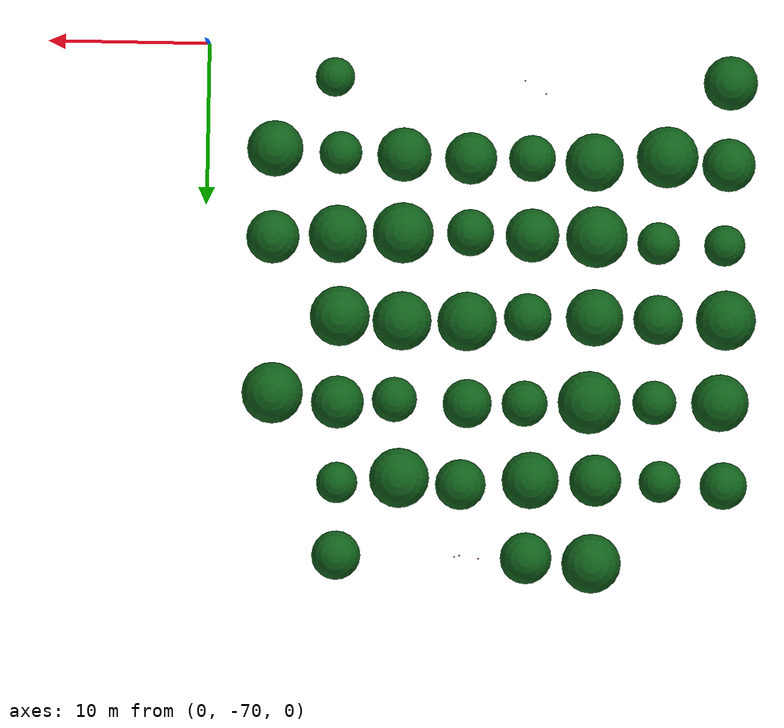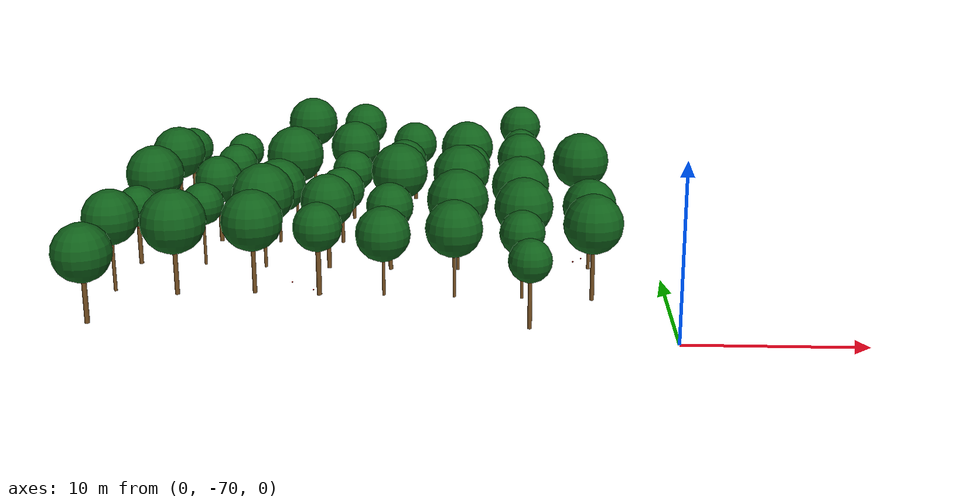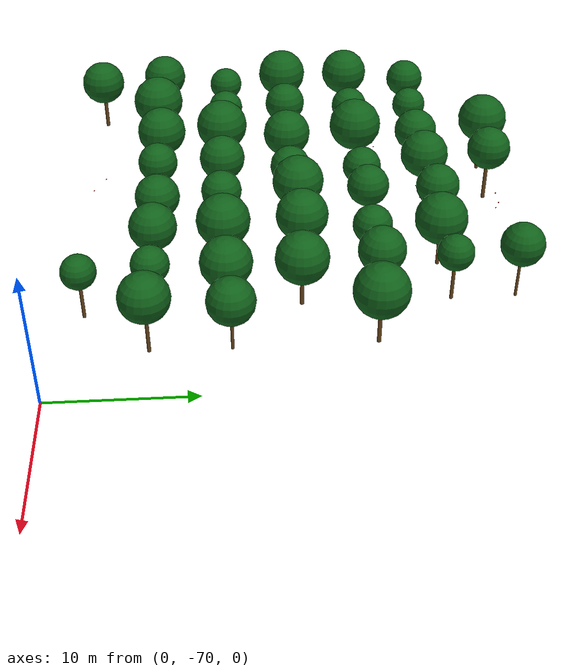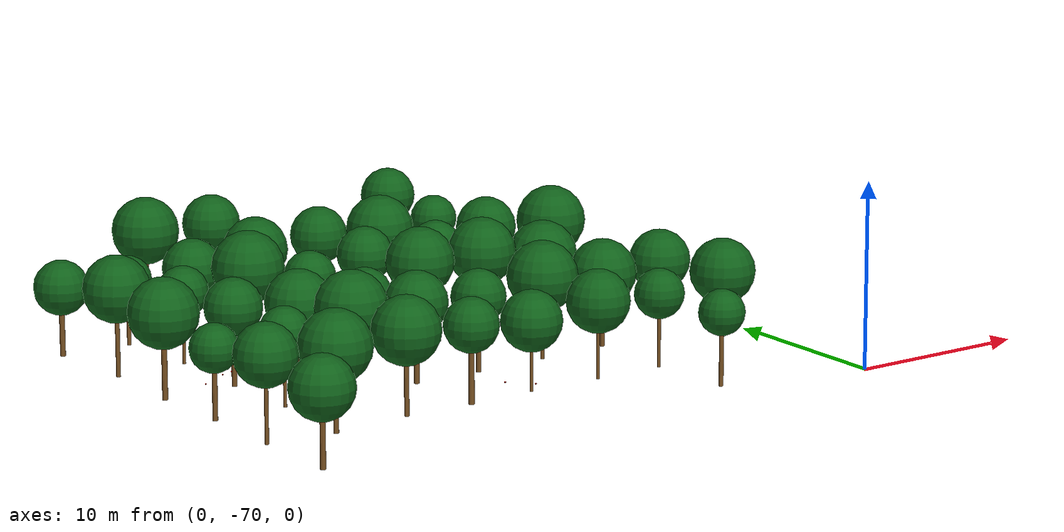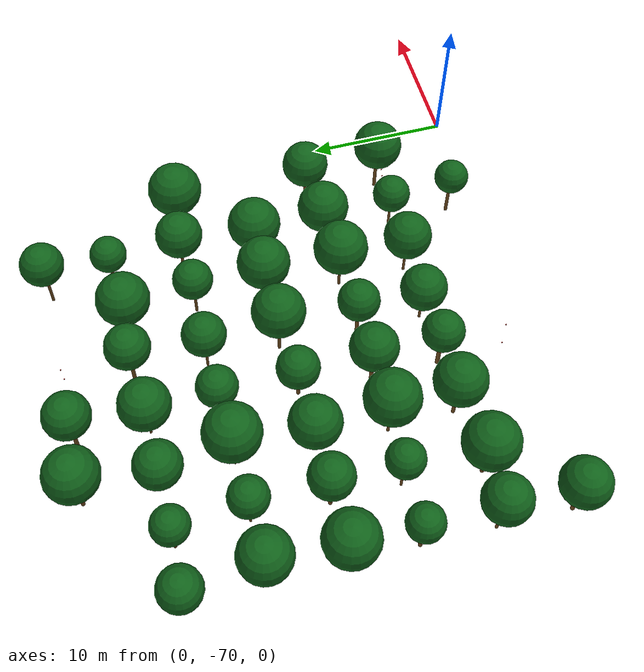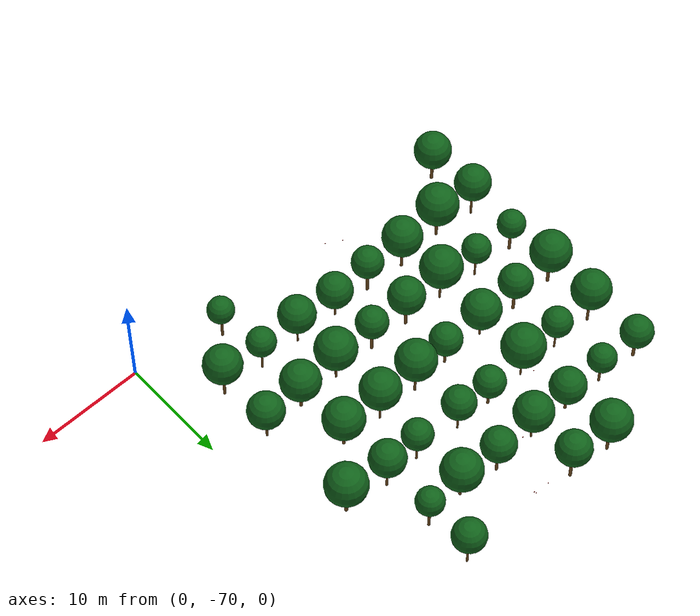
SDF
<sdf version="1.9">
 <world name="cheongsong_orchard">
  <model name="apple_tree_507">
   <static>true</static>
   <pose>-32.31 -67.98 0 0 0 0</pose>
   <link name="link">
    <collision name="trunk_col">
     <pose>0 0 1.20 0 0 0</pose>
     <geometry><cylinder><radius>0.141</radius><length>2.41</length></cylinder></geometry>
    </collision>
    <visual name="trunk_vis">
     <pose>0 0 1.20 0 0 0</pose>
     <geometry><cylinder><radius>0.141</radius><length>2.41</length></cylinder></geometry>
     <material><ambient>0.35 0.22 0.08 1</ambient><diffuse>0.45 0.30 0.12 1</diffuse></material>
    </visual>
    <collision name="canopy_col">
     <pose>0 0 4.08 0 0 0</pose>
     <geometry><sphere><radius>1.67</radius></sphere></geometry>
    </collision>
    <visual name="canopy_vis">
     <pose>0 0 4.08 0 0 0</pose>
     <geometry><sphere><radius>1.67</radius></sphere></geometry>
     <material><ambient>0.04 0.28 0.06 1</ambient><diffuse>0.06 0.38 0.10 1</diffuse></material>
    </visual>
   </link>
  </model>
  <model name="apple_tree_513">
   <static>true</static>
   <pose>-7.92 -67.95 0 0 0 0</pose>
   <link name="link">
    <collision name="trunk_col">
     <pose>0 0 1.34 0 0 0</pose>
     <geometry><cylinder><radius>0.117</radius><length>2.69</length></cylinder></geometry>
    </collision>
    <visual name="trunk_vis">
     <pose>0 0 1.34 0 0 0</pose>
     <geometry><cylinder><radius>0.117</radius><length>2.69</length></cylinder></geometry>
     <material><ambient>0.35 0.22 0.08 1</ambient><diffuse>0.45 0.30 0.12 1</diffuse></material>
    </visual>
    <collision name="canopy_col">
     <pose>0 0 3.90 0 0 0</pose>
     <geometry><sphere><radius>1.21</radius></sphere></geometry>
    </collision>
    <visual name="canopy_vis">
     <pose>0 0 3.90 0 0 0</pose>
     <geometry><sphere><radius>1.21</radius></sphere></geometry>
     <material><ambient>0.04 0.28 0.06 1</ambient><diffuse>0.06 0.38 0.10 1</diffuse></material>
    </visual>
   </link>
  </model>
  <model name="apple_tree_563">
   <static>true</static>
   <pose>-32.26 -62.92 0 0 0 0</pose>
   <link name="link">
    <collision name="trunk_col">
     <pose>0 0 1.45 0 0 0</pose>
     <geometry><cylinder><radius>0.102</radius><length>2.90</length></cylinder></geometry>
    </collision>
    <visual name="trunk_vis">
     <pose>0 0 1.45 0 0 0</pose>
     <geometry><cylinder><radius>0.102</radius><length>2.90</length></cylinder></geometry>
     <material><ambient>0.35 0.22 0.08 1</ambient><diffuse>0.45 0.30 0.12 1</diffuse></material>
    </visual>
    <collision name="canopy_col">
     <pose>0 0 4.54 0 0 0</pose>
     <geometry><sphere><radius>1.64</radius></sphere></geometry>
    </collision>
    <visual name="canopy_vis">
     <pose>0 0 4.54 0 0 0</pose>
     <geometry><sphere><radius>1.64</radius></sphere></geometry>
     <material><ambient>0.04 0.28 0.06 1</ambient><diffuse>0.06 0.38 0.10 1</diffuse></material>
    </visual>
   </link>
  </model>
  <model name="apple_tree_564">
   <static>true</static>
   <pose>-28.48 -63.34 0 0 0 0</pose>
   <link name="link">
    <collision name="trunk_col">
     <pose>0 0 1.28 0 0 0</pose>
     <geometry><cylinder><radius>0.135</radius><length>2.56</length></cylinder></geometry>
    </collision>
    <visual name="trunk_vis">
     <pose>0 0 1.28 0 0 0</pose>
     <geometry><cylinder><radius>0.135</radius><length>2.56</length></cylinder></geometry>
     <material><ambient>0.35 0.22 0.08 1</ambient><diffuse>0.45 0.30 0.12 1</diffuse></material>
    </visual>
    <collision name="canopy_col">
     <pose>0 0 4.45 0 0 0</pose>
     <geometry><sphere><radius>1.90</radius></sphere></geometry>
    </collision>
    <visual name="canopy_vis">
     <pose>0 0 4.45 0 0 0</pose>
     <geometry><sphere><radius>1.90</radius></sphere></geometry>
     <material><ambient>0.04 0.28 0.06 1</ambient><diffuse>0.06 0.38 0.10 1</diffuse></material>
    </visual>
   </link>
  </model>
  <model name="apple_tree_565">
   <static>true</static>
   <pose>-23.99 -62.94 0 0 0 0</pose>
   <link name="link">
    <collision name="trunk_col">
     <pose>0 0 1.32 0 0 0</pose>
     <geometry><cylinder><radius>0.125</radius><length>2.64</length></cylinder></geometry>
    </collision>
    <visual name="trunk_vis">
     <pose>0 0 1.32 0 0 0</pose>
     <geometry><cylinder><radius>0.125</radius><length>2.64</length></cylinder></geometry>
     <material><ambient>0.35 0.22 0.08 1</ambient><diffuse>0.45 0.30 0.12 1</diffuse></material>
    </visual>
    <collision name="canopy_col">
     <pose>0 0 4.44 0 0 0</pose>
     <geometry><sphere><radius>1.80</radius></sphere></geometry>
    </collision>
    <visual name="canopy_vis">
     <pose>0 0 4.44 0 0 0</pose>
     <geometry><sphere><radius>1.80</radius></sphere></geometry>
     <material><ambient>0.04 0.28 0.06 1</ambient><diffuse>0.06 0.38 0.10 1</diffuse></material>
    </visual>
   </link>
  </model>
  <model name="apple_tree_566">
   <static>true</static>
   <pose>-20.16 -63.13 0 0 0 0</pose>
   <link name="link">
    <collision name="trunk_col">
     <pose>0 0 1.35 0 0 0</pose>
     <geometry><cylinder><radius>0.148</radius><length>2.71</length></cylinder></geometry>
    </collision>
    <visual name="trunk_vis">
     <pose>0 0 1.35 0 0 0</pose>
     <geometry><cylinder><radius>0.148</radius><length>2.71</length></cylinder></geometry>
     <material><ambient>0.35 0.22 0.08 1</ambient><diffuse>0.45 0.30 0.12 1</diffuse></material>
    </visual>
    <collision name="canopy_col">
     <pose>0 0 4.14 0 0 0</pose>
     <geometry><sphere><radius>1.44</radius></sphere></geometry>
    </collision>
    <visual name="canopy_vis">
     <pose>0 0 4.14 0 0 0</pose>
     <geometry><sphere><radius>1.44</radius></sphere></geometry>
     <material><ambient>0.04 0.28 0.06 1</ambient><diffuse>0.06 0.38 0.10 1</diffuse></material>
    </visual>
   </link>
  </model>
  <model name="apple_tree_567">
   <static>true</static>
   <pose>-16.38 -63.08 0 0 0 0</pose>
   <link name="link">
    <collision name="trunk_col">
     <pose>0 0 1.07 0 0 0</pose>
     <geometry><cylinder><radius>0.092</radius><length>2.13</length></cylinder></geometry>
    </collision>
    <visual name="trunk_vis">
     <pose>0 0 1.07 0 0 0</pose>
     <geometry><cylinder><radius>0.092</radius><length>2.13</length></cylinder></geometry>
     <material><ambient>0.35 0.22 0.08 1</ambient><diffuse>0.45 0.30 0.12 1</diffuse></material>
    </visual>
    <collision name="canopy_col">
     <pose>0 0 3.74 0 0 0</pose>
     <geometry><sphere><radius>1.61</radius></sphere></geometry>
    </collision>
    <visual name="canopy_vis">
     <pose>0 0 3.74 0 0 0</pose>
     <geometry><sphere><radius>1.61</radius></sphere></geometry>
     <material><ambient>0.04 0.28 0.06 1</ambient><diffuse>0.06 0.38 0.10 1</diffuse></material>
    </visual>
   </link>
  </model>
  <model name="apple_tree_568">
   <static>true</static>
   <pose>-12.26 -63.23 0 0 0 0</pose>
   <link name="link">
    <collision name="trunk_col">
     <pose>0 0 1.25 0 0 0</pose>
     <geometry><cylinder><radius>0.089</radius><length>2.49</length></cylinder></geometry>
    </collision>
    <visual name="trunk_vis">
     <pose>0 0 1.25 0 0 0</pose>
     <geometry><cylinder><radius>0.089</radius><length>2.49</length></cylinder></geometry>
     <material><ambient>0.35 0.22 0.08 1</ambient><diffuse>0.45 0.30 0.12 1</diffuse></material>
    </visual>
    <collision name="canopy_col">
     <pose>0 0 4.16 0 0 0</pose>
     <geometry><sphere><radius>1.67</radius></sphere></geometry>
    </collision>
    <visual name="canopy_vis">
     <pose>0 0 4.16 0 0 0</pose>
     <geometry><sphere><radius>1.67</radius></sphere></geometry>
     <material><ambient>0.04 0.28 0.06 1</ambient><diffuse>0.06 0.38 0.10 1</diffuse></material>
    </visual>
   </link>
  </model>
  <model name="apple_tree_569">
   <static>true</static>
   <pose>-8.34 -63.29 0 0 0 0</pose>
   <link name="link">
    <collision name="trunk_col">
     <pose>0 0 1.32 0 0 0</pose>
     <geometry><cylinder><radius>0.091</radius><length>2.64</length></cylinder></geometry>
    </collision>
    <visual name="trunk_vis">
     <pose>0 0 1.32 0 0 0</pose>
     <geometry><cylinder><radius>0.091</radius><length>2.64</length></cylinder></geometry>
     <material><ambient>0.35 0.22 0.08 1</ambient><diffuse>0.45 0.30 0.12 1</diffuse></material>
    </visual>
    <collision name="canopy_col">
     <pose>0 0 3.96 0 0 0</pose>
     <geometry><sphere><radius>1.32</radius></sphere></geometry>
    </collision>
    <visual name="canopy_vis">
     <pose>0 0 3.96 0 0 0</pose>
     <geometry><sphere><radius>1.32</radius></sphere></geometry>
     <material><ambient>0.04 0.28 0.06 1</ambient><diffuse>0.06 0.38 0.10 1</diffuse></material>
    </visual>
   </link>
  </model>
  <model name="apple_tree_570">
   <static>true</static>
   <pose>-4.30 -63.46 0 0 0 0</pose>
   <link name="link">
    <collision name="trunk_col">
     <pose>0 0 1.43 0 0 0</pose>
     <geometry><cylinder><radius>0.123</radius><length>2.86</length></cylinder></geometry>
    </collision>
    <visual name="trunk_vis">
     <pose>0 0 1.43 0 0 0</pose>
     <geometry><cylinder><radius>0.123</radius><length>2.86</length></cylinder></geometry>
     <material><ambient>0.35 0.22 0.08 1</ambient><diffuse>0.45 0.30 0.12 1</diffuse></material>
    </visual>
    <collision name="canopy_col">
     <pose>0 0 4.59 0 0 0</pose>
     <geometry><sphere><radius>1.73</radius></sphere></geometry>
    </collision>
    <visual name="canopy_vis">
     <pose>0 0 4.59 0 0 0</pose>
     <geometry><sphere><radius>1.73</radius></sphere></geometry>
     <material><ambient>0.04 0.28 0.06 1</ambient><diffuse>0.06 0.38 0.10 1</diffuse></material>
    </visual>
   </link>
  </model>
  <model name="apple_tree_620">
   <static>true</static>
   <pose>-32.13 -57.96 0 0 0 0</pose>
   <link name="link">
    <collision name="trunk_col">
     <pose>0 0 1.23 0 0 0</pose>
     <geometry><cylinder><radius>0.133</radius><length>2.47</length></cylinder></geometry>
    </collision>
    <visual name="trunk_vis">
     <pose>0 0 1.23 0 0 0</pose>
     <geometry><cylinder><radius>0.133</radius><length>2.47</length></cylinder></geometry>
     <material><ambient>0.35 0.22 0.08 1</ambient><diffuse>0.45 0.30 0.12 1</diffuse></material>
    </visual>
    <collision name="canopy_col">
     <pose>0 0 3.74 0 0 0</pose>
     <geometry><sphere><radius>1.27</radius></sphere></geometry>
    </collision>
    <visual name="canopy_vis">
     <pose>0 0 3.74 0 0 0</pose>
     <geometry><sphere><radius>1.27</radius></sphere></geometry>
     <material><ambient>0.04 0.28 0.06 1</ambient><diffuse>0.06 0.38 0.10 1</diffuse></material>
    </visual>
   </link>
  </model>
  <model name="apple_tree_621">
   <static>true</static>
   <pose>-28.04 -58.03 0 0 0 0</pose>
   <link name="link">
    <collision name="trunk_col">
     <pose>0 0 1.31 0 0 0</pose>
     <geometry><cylinder><radius>0.087</radius><length>2.63</length></cylinder></geometry>
    </collision>
    <visual name="trunk_vis">
     <pose>0 0 1.31 0 0 0</pose>
     <geometry><cylinder><radius>0.087</radius><length>2.63</length></cylinder></geometry>
     <material><ambient>0.35 0.22 0.08 1</ambient><diffuse>0.45 0.30 0.12 1</diffuse></material>
    </visual>
    <collision name="canopy_col">
     <pose>0 0 3.94 0 0 0</pose>
     <geometry><sphere><radius>1.31</radius></sphere></geometry>
    </collision>
    <visual name="canopy_vis">
     <pose>0 0 3.94 0 0 0</pose>
     <geometry><sphere><radius>1.31</radius></sphere></geometry>
     <material><ambient>0.04 0.28 0.06 1</ambient><diffuse>0.06 0.38 0.10 1</diffuse></material>
    </visual>
   </link>
  </model>
  <model name="apple_tree_622">
   <static>true</static>
   <pose>-24.20 -58.35 0 0 0 0</pose>
   <link name="link">
    <collision name="trunk_col">
     <pose>0 0 1.39 0 0 0</pose>
     <geometry><cylinder><radius>0.100</radius><length>2.79</length></cylinder></geometry>
    </collision>
    <visual name="trunk_vis">
     <pose>0 0 1.39 0 0 0</pose>
     <geometry><cylinder><radius>0.100</radius><length>2.79</length></cylinder></geometry>
     <material><ambient>0.35 0.22 0.08 1</ambient><diffuse>0.45 0.30 0.12 1</diffuse></material>
    </visual>
    <collision name="canopy_col">
     <pose>0 0 4.69 0 0 0</pose>
     <geometry><sphere><radius>1.90</radius></sphere></geometry>
    </collision>
    <visual name="canopy_vis">
     <pose>0 0 4.69 0 0 0</pose>
     <geometry><sphere><radius>1.90</radius></sphere></geometry>
     <material><ambient>0.04 0.28 0.06 1</ambient><diffuse>0.06 0.38 0.10 1</diffuse></material>
    </visual>
   </link>
  </model>
  <model name="apple_tree_623">
   <static>true</static>
   <pose>-20.24 -58.38 0 0 0 0</pose>
   <link name="link">
    <collision name="trunk_col">
     <pose>0 0 1.32 0 0 0</pose>
     <geometry><cylinder><radius>0.135</radius><length>2.64</length></cylinder></geometry>
    </collision>
    <visual name="trunk_vis">
     <pose>0 0 1.32 0 0 0</pose>
     <geometry><cylinder><radius>0.135</radius><length>2.64</length></cylinder></geometry>
     <material><ambient>0.35 0.22 0.08 1</ambient><diffuse>0.45 0.30 0.12 1</diffuse></material>
    </visual>
    <collision name="canopy_col">
     <pose>0 0 4.30 0 0 0</pose>
     <geometry><sphere><radius>1.66</radius></sphere></geometry>
    </collision>
    <visual name="canopy_vis">
     <pose>0 0 4.30 0 0 0</pose>
     <geometry><sphere><radius>1.66</radius></sphere></geometry>
     <material><ambient>0.04 0.28 0.06 1</ambient><diffuse>0.06 0.38 0.10 1</diffuse></material>
    </visual>
   </link>
  </model>
  <model name="apple_tree_624">
   <static>true</static>
   <pose>-16.42 -58.49 0 0 0 0</pose>
   <link name="link">
    <collision name="trunk_col">
     <pose>0 0 1.29 0 0 0</pose>
     <geometry><cylinder><radius>0.128</radius><length>2.59</length></cylinder></geometry>
    </collision>
    <visual name="trunk_vis">
     <pose>0 0 1.29 0 0 0</pose>
     <geometry><cylinder><radius>0.128</radius><length>2.59</length></cylinder></geometry>
     <material><ambient>0.35 0.22 0.08 1</ambient><diffuse>0.45 0.30 0.12 1</diffuse></material>
    </visual>
    <collision name="canopy_col">
     <pose>0 0 4.04 0 0 0</pose>
     <geometry><sphere><radius>1.45</radius></sphere></geometry>
    </collision>
    <visual name="canopy_vis">
     <pose>0 0 4.04 0 0 0</pose>
     <geometry><sphere><radius>1.45</radius></sphere></geometry>
     <material><ambient>0.04 0.28 0.06 1</ambient><diffuse>0.06 0.38 0.10 1</diffuse></material>
    </visual>
   </link>
  </model>
  <model name="apple_tree_625">
   <static>true</static>
   <pose>-12.27 -58.40 0 0 0 0</pose>
   <link name="link">
    <collision name="trunk_col">
     <pose>0 0 1.29 0 0 0</pose>
     <geometry><cylinder><radius>0.098</radius><length>2.59</length></cylinder></geometry>
    </collision>
    <visual name="trunk_vis">
     <pose>0 0 1.29 0 0 0</pose>
     <geometry><cylinder><radius>0.098</radius><length>2.59</length></cylinder></geometry>
     <material><ambient>0.35 0.22 0.08 1</ambient><diffuse>0.45 0.30 0.12 1</diffuse></material>
    </visual>
    <collision name="canopy_col">
     <pose>0 0 4.47 0 0 0</pose>
     <geometry><sphere><radius>1.88</radius></sphere></geometry>
    </collision>
    <visual name="canopy_vis">
     <pose>0 0 4.47 0 0 0</pose>
     <geometry><sphere><radius>1.88</radius></sphere></geometry>
     <material><ambient>0.04 0.28 0.06 1</ambient><diffuse>0.06 0.38 0.10 1</diffuse></material>
    </visual>
   </link>
  </model>
  <model name="apple_tree_626">
   <static>true</static>
   <pose>-8.24 -58.27 0 0 0 0</pose>
   <link name="link">
    <collision name="trunk_col">
     <pose>0 0 1.11 0 0 0</pose>
     <geometry><cylinder><radius>0.128</radius><length>2.22</length></cylinder></geometry>
    </collision>
    <visual name="trunk_vis">
     <pose>0 0 1.11 0 0 0</pose>
     <geometry><cylinder><radius>0.128</radius><length>2.22</length></cylinder></geometry>
     <material><ambient>0.35 0.22 0.08 1</ambient><diffuse>0.45 0.30 0.12 1</diffuse></material>
    </visual>
    <collision name="canopy_col">
     <pose>0 0 4.02 0 0 0</pose>
     <geometry><sphere><radius>1.80</radius></sphere></geometry>
    </collision>
    <visual name="canopy_vis">
     <pose>0 0 4.02 0 0 0</pose>
     <geometry><sphere><radius>1.80</radius></sphere></geometry>
     <material><ambient>0.04 0.28 0.06 1</ambient><diffuse>0.06 0.38 0.10 1</diffuse></material>
    </visual>
   </link>
  </model>
  <model name="apple_tree_627">
   <static>true</static>
   <pose>-4.24 -58.02 0 0 0 0</pose>
   <link name="link">
    <collision name="trunk_col">
     <pose>0 0 1.21 0 0 0</pose>
     <geometry><cylinder><radius>0.106</radius><length>2.42</length></cylinder></geometry>
    </collision>
    <visual name="trunk_vis">
     <pose>0 0 1.21 0 0 0</pose>
     <geometry><cylinder><radius>0.106</radius><length>2.42</length></cylinder></geometry>
     <material><ambient>0.35 0.22 0.08 1</ambient><diffuse>0.45 0.30 0.12 1</diffuse></material>
    </visual>
    <collision name="canopy_col">
     <pose>0 0 4.06 0 0 0</pose>
     <geometry><sphere><radius>1.64</radius></sphere></geometry>
    </collision>
    <visual name="canopy_vis">
     <pose>0 0 4.06 0 0 0</pose>
     <geometry><sphere><radius>1.64</radius></sphere></geometry>
     <material><ambient>0.04 0.28 0.06 1</ambient><diffuse>0.06 0.38 0.10 1</diffuse></material>
    </visual>
   </link>
  </model>
  <model name="apple_tree_679">
   <static>true</static>
   <pose>-32.24 -53.35 0 0 0 0</pose>
   <link name="link">
    <collision name="trunk_col">
     <pose>0 0 1.35 0 0 0</pose>
     <geometry><cylinder><radius>0.144</radius><length>2.70</length></cylinder></geometry>
    </collision>
    <visual name="trunk_vis">
     <pose>0 0 1.35 0 0 0</pose>
     <geometry><cylinder><radius>0.144</radius><length>2.70</length></cylinder></geometry>
     <material><ambient>0.35 0.22 0.08 1</ambient><diffuse>0.45 0.30 0.12 1</diffuse></material>
    </visual>
    <collision name="canopy_col">
     <pose>0 0 4.54 0 0 0</pose>
     <geometry><sphere><radius>1.85</radius></sphere></geometry>
    </collision>
    <visual name="canopy_vis">
     <pose>0 0 4.54 0 0 0</pose>
     <geometry><sphere><radius>1.85</radius></sphere></geometry>
     <material><ambient>0.04 0.28 0.06 1</ambient><diffuse>0.06 0.38 0.10 1</diffuse></material>
    </visual>
   </link>
  </model>
  <model name="apple_tree_680">
   <static>true</static>
   <pose>-28.08 -53.32 0 0 0 0</pose>
   <link name="link">
    <collision name="trunk_col">
     <pose>0 0 1.34 0 0 0</pose>
     <geometry><cylinder><radius>0.137</radius><length>2.67</length></cylinder></geometry>
    </collision>
    <visual name="trunk_vis">
     <pose>0 0 1.34 0 0 0</pose>
     <geometry><cylinder><radius>0.137</radius><length>2.67</length></cylinder></geometry>
     <material><ambient>0.35 0.22 0.08 1</ambient><diffuse>0.45 0.30 0.12 1</diffuse></material>
    </visual>
    <collision name="canopy_col">
     <pose>0 0 4.20 0 0 0</pose>
     <geometry><sphere><radius>1.53</radius></sphere></geometry>
    </collision>
    <visual name="canopy_vis">
     <pose>0 0 4.20 0 0 0</pose>
     <geometry><sphere><radius>1.53</radius></sphere></geometry>
     <material><ambient>0.04 0.28 0.06 1</ambient><diffuse>0.06 0.38 0.10 1</diffuse></material>
    </visual>
   </link>
  </model>
  <model name="apple_tree_681">
   <static>true</static>
   <pose>-24.17 -53.38 0 0 0 0</pose>
   <link name="link">
    <collision name="trunk_col">
     <pose>0 0 1.02 0 0 0</pose>
     <geometry><cylinder><radius>0.099</radius><length>2.05</length></cylinder></geometry>
    </collision>
    <visual name="trunk_vis">
     <pose>0 0 1.02 0 0 0</pose>
     <geometry><cylinder><radius>0.099</radius><length>2.05</length></cylinder></geometry>
     <material><ambient>0.35 0.22 0.08 1</ambient><diffuse>0.45 0.30 0.12 1</diffuse></material>
    </visual>
    <collision name="canopy_col">
     <pose>0 0 3.82 0 0 0</pose>
     <geometry><sphere><radius>1.77</radius></sphere></geometry>
    </collision>
    <visual name="canopy_vis">
     <pose>0 0 3.82 0 0 0</pose>
     <geometry><sphere><radius>1.77</radius></sphere></geometry>
     <material><ambient>0.04 0.28 0.06 1</ambient><diffuse>0.06 0.38 0.10 1</diffuse></material>
    </visual>
   </link>
  </model>
  <model name="apple_tree_682">
   <static>true</static>
   <pose>-20.05 -53.35 0 0 0 0</pose>
   <link name="link">
    <collision name="trunk_col">
     <pose>0 0 1.05 0 0 0</pose>
     <geometry><cylinder><radius>0.115</radius><length>2.10</length></cylinder></geometry>
    </collision>
    <visual name="trunk_vis">
     <pose>0 0 1.05 0 0 0</pose>
     <geometry><cylinder><radius>0.115</radius><length>2.10</length></cylinder></geometry>
     <material><ambient>0.35 0.22 0.08 1</ambient><diffuse>0.45 0.30 0.12 1</diffuse></material>
    </visual>
    <collision name="canopy_col">
     <pose>0 0 3.57 0 0 0</pose>
     <geometry><sphere><radius>1.47</radius></sphere></geometry>
    </collision>
    <visual name="canopy_vis">
     <pose>0 0 3.57 0 0 0</pose>
     <geometry><sphere><radius>1.47</radius></sphere></geometry>
     <material><ambient>0.04 0.28 0.06 1</ambient><diffuse>0.06 0.38 0.10 1</diffuse></material>
    </visual>
   </link>
  </model>
  <model name="apple_tree_683">
   <static>true</static>
   <pose>-16.30 -53.01 0 0 0 0</pose>
   <link name="link">
    <collision name="trunk_col">
     <pose>0 0 1.46 0 0 0</pose>
     <geometry><cylinder><radius>0.112</radius><length>2.92</length></cylinder></geometry>
    </collision>
    <visual name="trunk_vis">
     <pose>0 0 1.46 0 0 0</pose>
     <geometry><cylinder><radius>0.112</radius><length>2.92</length></cylinder></geometry>
     <material><ambient>0.35 0.22 0.08 1</ambient><diffuse>0.45 0.30 0.12 1</diffuse></material>
    </visual>
    <collision name="canopy_col">
     <pose>0 0 4.76 0 0 0</pose>
     <geometry><sphere><radius>1.83</radius></sphere></geometry>
    </collision>
    <visual name="canopy_vis">
     <pose>0 0 4.76 0 0 0</pose>
     <geometry><sphere><radius>1.83</radius></sphere></geometry>
     <material><ambient>0.04 0.28 0.06 1</ambient><diffuse>0.06 0.38 0.10 1</diffuse></material>
    </visual>
   </link>
  </model>
  <model name="apple_tree_684">
   <static>true</static>
   <pose>-12.29 -52.98 0 0 0 0</pose>
   <link name="link">
    <collision name="trunk_col">
     <pose>0 0 1.44 0 0 0</pose>
     <geometry><cylinder><radius>0.084</radius><length>2.88</length></cylinder></geometry>
    </collision>
    <visual name="trunk_vis">
     <pose>0 0 1.44 0 0 0</pose>
     <geometry><cylinder><radius>0.084</radius><length>2.88</length></cylinder></geometry>
     <material><ambient>0.35 0.22 0.08 1</ambient><diffuse>0.45 0.30 0.12 1</diffuse></material>
    </visual>
    <collision name="canopy_col">
     <pose>0 0 4.70 0 0 0</pose>
     <geometry><sphere><radius>1.82</radius></sphere></geometry>
    </collision>
    <visual name="canopy_vis">
     <pose>0 0 4.70 0 0 0</pose>
     <geometry><sphere><radius>1.82</radius></sphere></geometry>
     <material><ambient>0.04 0.28 0.06 1</ambient><diffuse>0.06 0.38 0.10 1</diffuse></material>
    </visual>
   </link>
  </model>
  <model name="apple_tree_685">
   <static>true</static>
   <pose>-8.45 -53.21 0 0 0 0</pose>
   <link name="link">
    <collision name="trunk_col">
     <pose>0 0 1.07 0 0 0</pose>
     <geometry><cylinder><radius>0.139</radius><length>2.14</length></cylinder></geometry>
    </collision>
    <visual name="trunk_vis">
     <pose>0 0 1.07 0 0 0</pose>
     <geometry><cylinder><radius>0.139</radius><length>2.14</length></cylinder></geometry>
     <material><ambient>0.35 0.22 0.08 1</ambient><diffuse>0.45 0.30 0.12 1</diffuse></material>
    </visual>
    <collision name="canopy_col">
     <pose>0 0 3.99 0 0 0</pose>
     <geometry><sphere><radius>1.85</radius></sphere></geometry>
    </collision>
    <visual name="canopy_vis">
     <pose>0 0 3.99 0 0 0</pose>
     <geometry><sphere><radius>1.85</radius></sphere></geometry>
     <material><ambient>0.04 0.28 0.06 1</ambient><diffuse>0.06 0.38 0.10 1</diffuse></material>
    </visual>
   </link>
  </model>
  <model name="apple_tree_738">
   <static>true</static>
   <pose>-31.96 -48.26 0 0 0 0</pose>
   <link name="link">
    <collision name="trunk_col">
     <pose>0 0 1.45 0 0 0</pose>
     <geometry><cylinder><radius>0.116</radius><length>2.91</length></cylinder></geometry>
    </collision>
    <visual name="trunk_vis">
     <pose>0 0 1.45 0 0 0</pose>
     <geometry><cylinder><radius>0.116</radius><length>2.91</length></cylinder></geometry>
     <material><ambient>0.35 0.22 0.08 1</ambient><diffuse>0.45 0.30 0.12 1</diffuse></material>
    </visual>
    <collision name="canopy_col">
     <pose>0 0 4.67 0 0 0</pose>
     <geometry><sphere><radius>1.77</radius></sphere></geometry>
    </collision>
    <visual name="canopy_vis">
     <pose>0 0 4.67 0 0 0</pose>
     <geometry><sphere><radius>1.77</radius></sphere></geometry>
     <material><ambient>0.04 0.28 0.06 1</ambient><diffuse>0.06 0.38 0.10 1</diffuse></material>
    </visual>
   </link>
  </model>
  <model name="apple_tree_739">
   <static>true</static>
   <pose>-27.95 -48.20 0 0 0 0</pose>
   <link name="link">
    <collision name="trunk_col">
     <pose>0 0 1.27 0 0 0</pose>
     <geometry><cylinder><radius>0.086</radius><length>2.53</length></cylinder></geometry>
    </collision>
    <visual name="trunk_vis">
     <pose>0 0 1.27 0 0 0</pose>
     <geometry><cylinder><radius>0.086</radius><length>2.53</length></cylinder></geometry>
     <material><ambient>0.35 0.22 0.08 1</ambient><diffuse>0.45 0.30 0.12 1</diffuse></material>
    </visual>
    <collision name="canopy_col">
     <pose>0 0 3.89 0 0 0</pose>
     <geometry><sphere><radius>1.36</radius></sphere></geometry>
    </collision>
    <visual name="canopy_vis">
     <pose>0 0 3.89 0 0 0</pose>
     <geometry><sphere><radius>1.36</radius></sphere></geometry>
     <material><ambient>0.04 0.28 0.06 1</ambient><diffuse>0.06 0.38 0.10 1</diffuse></material>
    </visual>
   </link>
  </model>
  <model name="apple_tree_740">
   <static>true</static>
   <pose>-23.91 -48.15 0 0 0 0</pose>
   <link name="link">
    <collision name="trunk_col">
     <pose>0 0 1.32 0 0 0</pose>
     <geometry><cylinder><radius>0.083</radius><length>2.64</length></cylinder></geometry>
    </collision>
    <visual name="trunk_vis">
     <pose>0 0 1.32 0 0 0</pose>
     <geometry><cylinder><radius>0.083</radius><length>2.64</length></cylinder></geometry>
     <material><ambient>0.35 0.22 0.08 1</ambient><diffuse>0.45 0.30 0.12 1</diffuse></material>
    </visual>
    <collision name="canopy_col">
     <pose>0 0 4.58 0 0 0</pose>
     <geometry><sphere><radius>1.94</radius></sphere></geometry>
    </collision>
    <visual name="canopy_vis">
     <pose>0 0 4.58 0 0 0</pose>
     <geometry><sphere><radius>1.94</radius></sphere></geometry>
     <material><ambient>0.04 0.28 0.06 1</ambient><diffuse>0.06 0.38 0.10 1</diffuse></material>
    </visual>
   </link>
  </model>
  <model name="apple_tree_741">
   <static>true</static>
   <pose>-19.96 -48.00 0 0 0 0</pose>
   <link name="link">
    <collision name="trunk_col">
     <pose>0 0 0.99 0 0 0</pose>
     <geometry><cylinder><radius>0.119</radius><length>1.98</length></cylinder></geometry>
    </collision>
    <visual name="trunk_vis">
     <pose>0 0 0.99 0 0 0</pose>
     <geometry><cylinder><radius>0.119</radius><length>1.98</length></cylinder></geometry>
     <material><ambient>0.35 0.22 0.08 1</ambient><diffuse>0.45 0.30 0.12 1</diffuse></material>
    </visual>
    <collision name="canopy_col">
     <pose>0 0 3.40 0 0 0</pose>
     <geometry><sphere><radius>1.42</radius></sphere></geometry>
    </collision>
    <visual name="canopy_vis">
     <pose>0 0 3.40 0 0 0</pose>
     <geometry><sphere><radius>1.42</radius></sphere></geometry>
     <material><ambient>0.04 0.28 0.06 1</ambient><diffuse>0.06 0.38 0.10 1</diffuse></material>
    </visual>
   </link>
  </model>
  <model name="apple_tree_742">
   <static>true</static>
   <pose>-16.40 -47.95 0 0 0 0</pose>
   <link name="link">
    <collision name="trunk_col">
     <pose>0 0 1.30 0 0 0</pose>
     <geometry><cylinder><radius>0.086</radius><length>2.59</length></cylinder></geometry>
    </collision>
    <visual name="trunk_vis">
     <pose>0 0 1.30 0 0 0</pose>
     <geometry><cylinder><radius>0.086</radius><length>2.59</length></cylinder></geometry>
     <material><ambient>0.35 0.22 0.08 1</ambient><diffuse>0.45 0.30 0.12 1</diffuse></material>
    </visual>
    <collision name="canopy_col">
     <pose>0 0 4.10 0 0 0</pose>
     <geometry><sphere><radius>1.51</radius></sphere></geometry>
    </collision>
    <visual name="canopy_vis">
     <pose>0 0 4.10 0 0 0</pose>
     <geometry><sphere><radius>1.51</radius></sphere></geometry>
     <material><ambient>0.04 0.28 0.06 1</ambient><diffuse>0.06 0.38 0.10 1</diffuse></material>
    </visual>
   </link>
  </model>
  <model name="apple_tree_743">
   <static>true</static>
   <pose>-11.91 -48.12 0 0 0 0</pose>
   <link name="link">
    <collision name="trunk_col">
     <pose>0 0 1.28 0 0 0</pose>
     <geometry><cylinder><radius>0.096</radius><length>2.56</length></cylinder></geometry>
    </collision>
    <visual name="trunk_vis">
     <pose>0 0 1.28 0 0 0</pose>
     <geometry><cylinder><radius>0.096</radius><length>2.56</length></cylinder></geometry>
     <material><ambient>0.35 0.22 0.08 1</ambient><diffuse>0.45 0.30 0.12 1</diffuse></material>
    </visual>
    <collision name="canopy_col">
     <pose>0 0 3.95 0 0 0</pose>
     <geometry><sphere><radius>1.39</radius></sphere></geometry>
    </collision>
    <visual name="canopy_vis">
     <pose>0 0 3.95 0 0 0</pose>
     <geometry><sphere><radius>1.39</radius></sphere></geometry>
     <material><ambient>0.04 0.28 0.06 1</ambient><diffuse>0.06 0.38 0.10 1</diffuse></material>
    </visual>
   </link>
  </model>
  <model name="apple_tree_744">
   <static>true</static>
   <pose>-8.40 -47.91 0 0 0 0</pose>
   <link name="link">
    <collision name="trunk_col">
     <pose>0 0 1.42 0 0 0</pose>
     <geometry><cylinder><radius>0.103</radius><length>2.84</length></cylinder></geometry>
    </collision>
    <visual name="trunk_vis">
     <pose>0 0 1.42 0 0 0</pose>
     <geometry><cylinder><radius>0.103</radius><length>2.84</length></cylinder></geometry>
     <material><ambient>0.35 0.22 0.08 1</ambient><diffuse>0.45 0.30 0.12 1</diffuse></material>
    </visual>
    <collision name="canopy_col">
     <pose>0 0 4.47 0 0 0</pose>
     <geometry><sphere><radius>1.63</radius></sphere></geometry>
    </collision>
    <visual name="canopy_vis">
     <pose>0 0 4.47 0 0 0</pose>
     <geometry><sphere><radius>1.63</radius></sphere></geometry>
     <material><ambient>0.04 0.28 0.06 1</ambient><diffuse>0.06 0.38 0.10 1</diffuse></material>
    </visual>
   </link>
  </model>
  <model name="apple_tree_745">
   <static>true</static>
   <pose>-4.37 -48.41 0 0 0 0</pose>
   <link name="link">
    <collision name="trunk_col">
     <pose>0 0 1.24 0 0 0</pose>
     <geometry><cylinder><radius>0.136</radius><length>2.48</length></cylinder></geometry>
    </collision>
    <visual name="trunk_vis">
     <pose>0 0 1.24 0 0 0</pose>
     <geometry><cylinder><radius>0.136</radius><length>2.48</length></cylinder></geometry>
     <material><ambient>0.35 0.22 0.08 1</ambient><diffuse>0.45 0.30 0.12 1</diffuse></material>
    </visual>
    <collision name="canopy_col">
     <pose>0 0 4.37 0 0 0</pose>
     <geometry><sphere><radius>1.89</radius></sphere></geometry>
    </collision>
    <visual name="canopy_vis">
     <pose>0 0 4.37 0 0 0</pose>
     <geometry><sphere><radius>1.89</radius></sphere></geometry>
     <material><ambient>0.04 0.28 0.06 1</ambient><diffuse>0.06 0.38 0.10 1</diffuse></material>
    </visual>
   </link>
  </model>
  <model name="apple_tree_797">
   <static>true</static>
   <pose>-32.30 -43.14 0 0 0 0</pose>
   <link name="link">
    <collision name="trunk_col">
     <pose>0 0 1.13 0 0 0</pose>
     <geometry><cylinder><radius>0.142</radius><length>2.25</length></cylinder></geometry>
    </collision>
    <visual name="trunk_vis">
     <pose>0 0 1.13 0 0 0</pose>
     <geometry><cylinder><radius>0.142</radius><length>2.25</length></cylinder></geometry>
     <material><ambient>0.35 0.22 0.08 1</ambient><diffuse>0.45 0.30 0.12 1</diffuse></material>
    </visual>
    <collision name="canopy_col">
     <pose>0 0 3.71 0 0 0</pose>
     <geometry><sphere><radius>1.46</radius></sphere></geometry>
    </collision>
    <visual name="canopy_vis">
     <pose>0 0 3.71 0 0 0</pose>
     <geometry><sphere><radius>1.46</radius></sphere></geometry>
     <material><ambient>0.04 0.28 0.06 1</ambient><diffuse>0.06 0.38 0.10 1</diffuse></material>
    </visual>
   </link>
  </model>
  <model name="apple_tree_798">
   <static>true</static>
   <pose>-28.37 -43.32 0 0 0 0</pose>
   <link name="link">
    <collision name="trunk_col">
     <pose>0 0 1.13 0 0 0</pose>
     <geometry><cylinder><radius>0.111</radius><length>2.26</length></cylinder></geometry>
    </collision>
    <visual name="trunk_vis">
     <pose>0 0 1.13 0 0 0</pose>
     <geometry><cylinder><radius>0.111</radius><length>2.26</length></cylinder></geometry>
     <material><ambient>0.35 0.22 0.08 1</ambient><diffuse>0.45 0.30 0.12 1</diffuse></material>
    </visual>
    <collision name="canopy_col">
     <pose>0 0 3.56 0 0 0</pose>
     <geometry><sphere><radius>1.29</radius></sphere></geometry>
    </collision>
    <visual name="canopy_vis">
     <pose>0 0 3.56 0 0 0</pose>
     <geometry><sphere><radius>1.29</radius></sphere></geometry>
     <material><ambient>0.04 0.28 0.06 1</ambient><diffuse>0.06 0.38 0.10 1</diffuse></material>
    </visual>
   </link>
  </model>
  <model name="apple_tree_799">
   <static>true</static>
   <pose>-24.40 -43.33 0 0 0 0</pose>
   <link name="link">
    <collision name="trunk_col">
     <pose>0 0 0.98 0 0 0</pose>
     <geometry><cylinder><radius>0.124</radius><length>1.96</length></cylinder></geometry>
    </collision>
    <visual name="trunk_vis">
     <pose>0 0 0.98 0 0 0</pose>
     <geometry><cylinder><radius>0.124</radius><length>1.96</length></cylinder></geometry>
     <material><ambient>0.35 0.22 0.08 1</ambient><diffuse>0.45 0.30 0.12 1</diffuse></material>
    </visual>
    <collision name="canopy_col">
     <pose>0 0 3.58 0 0 0</pose>
     <geometry><sphere><radius>1.61</radius></sphere></geometry>
    </collision>
    <visual name="canopy_vis">
     <pose>0 0 3.58 0 0 0</pose>
     <geometry><sphere><radius>1.61</radius></sphere></geometry>
     <material><ambient>0.04 0.28 0.06 1</ambient><diffuse>0.06 0.38 0.10 1</diffuse></material>
    </visual>
   </link>
  </model>
  <model name="apple_tree_800">
   <static>true</static>
   <pose>-20.37 -43.28 0 0 0 0</pose>
   <link name="link">
    <collision name="trunk_col">
     <pose>0 0 1.13 0 0 0</pose>
     <geometry><cylinder><radius>0.090</radius><length>2.26</length></cylinder></geometry>
    </collision>
    <visual name="trunk_vis">
     <pose>0 0 1.13 0 0 0</pose>
     <geometry><cylinder><radius>0.090</radius><length>2.26</length></cylinder></geometry>
     <material><ambient>0.35 0.22 0.08 1</ambient><diffuse>0.45 0.30 0.12 1</diffuse></material>
    </visual>
    <collision name="canopy_col">
     <pose>0 0 4.02 0 0 0</pose>
     <geometry><sphere><radius>1.76</radius></sphere></geometry>
    </collision>
    <visual name="canopy_vis">
     <pose>0 0 4.02 0 0 0</pose>
     <geometry><sphere><radius>1.76</radius></sphere></geometry>
     <material><ambient>0.04 0.28 0.06 1</ambient><diffuse>0.06 0.38 0.10 1</diffuse></material>
    </visual>
   </link>
  </model>
  <model name="apple_tree_801">
   <static>true</static>
   <pose>-16.07 -42.95 0 0 0 0</pose>
   <link name="link">
    <collision name="trunk_col">
     <pose>0 0 1.28 0 0 0</pose>
     <geometry><cylinder><radius>0.128</radius><length>2.56</length></cylinder></geometry>
    </collision>
    <visual name="trunk_vis">
     <pose>0 0 1.28 0 0 0</pose>
     <geometry><cylinder><radius>0.128</radius><length>2.56</length></cylinder></geometry>
     <material><ambient>0.35 0.22 0.08 1</ambient><diffuse>0.45 0.30 0.12 1</diffuse></material>
    </visual>
    <collision name="canopy_col">
     <pose>0 0 4.12 0 0 0</pose>
     <geometry><sphere><radius>1.56</radius></sphere></geometry>
    </collision>
    <visual name="canopy_vis">
     <pose>0 0 4.12 0 0 0</pose>
     <geometry><sphere><radius>1.56</radius></sphere></geometry>
     <material><ambient>0.04 0.28 0.06 1</ambient><diffuse>0.06 0.38 0.10 1</diffuse></material>
    </visual>
   </link>
  </model>
  <model name="apple_tree_802">
   <static>true</static>
   <pose>-12.28 -43.29 0 0 0 0</pose>
   <link name="link">
    <collision name="trunk_col">
     <pose>0 0 1.07 0 0 0</pose>
     <geometry><cylinder><radius>0.133</radius><length>2.14</length></cylinder></geometry>
    </collision>
    <visual name="trunk_vis">
     <pose>0 0 1.07 0 0 0</pose>
     <geometry><cylinder><radius>0.133</radius><length>2.14</length></cylinder></geometry>
     <material><ambient>0.35 0.22 0.08 1</ambient><diffuse>0.45 0.30 0.12 1</diffuse></material>
    </visual>
    <collision name="canopy_col">
     <pose>0 0 3.99 0 0 0</pose>
     <geometry><sphere><radius>1.85</radius></sphere></geometry>
    </collision>
    <visual name="canopy_vis">
     <pose>0 0 3.99 0 0 0</pose>
     <geometry><sphere><radius>1.85</radius></sphere></geometry>
     <material><ambient>0.04 0.28 0.06 1</ambient><diffuse>0.06 0.38 0.10 1</diffuse></material>
    </visual>
   </link>
  </model>
  <model name="apple_tree_803">
   <static>true</static>
   <pose>-8.44 -42.94 0 0 0 0</pose>
   <link name="link">
    <collision name="trunk_col">
     <pose>0 0 1.35 0 0 0</pose>
     <geometry><cylinder><radius>0.120</radius><length>2.70</length></cylinder></geometry>
    </collision>
    <visual name="trunk_vis">
     <pose>0 0 1.35 0 0 0</pose>
     <geometry><cylinder><radius>0.120</radius><length>2.70</length></cylinder></geometry>
     <material><ambient>0.35 0.22 0.08 1</ambient><diffuse>0.45 0.30 0.12 1</diffuse></material>
    </visual>
    <collision name="canopy_col">
     <pose>0 0 3.97 0 0 0</pose>
     <geometry><sphere><radius>1.27</radius></sphere></geometry>
    </collision>
    <visual name="canopy_vis">
     <pose>0 0 3.97 0 0 0</pose>
     <geometry><sphere><radius>1.27</radius></sphere></geometry>
     <material><ambient>0.04 0.28 0.06 1</ambient><diffuse>0.06 0.38 0.10 1</diffuse></material>
    </visual>
   </link>
  </model>
  <model name="apple_tree_858">
   <static>true</static>
   <pose>-24.20 -38.23 0 0 0 0</pose>
   <link name="link">
    <collision name="trunk_col">
     <pose>0 0 1.39 0 0 0</pose>
     <geometry><cylinder><radius>0.135</radius><length>2.77</length></cylinder></geometry>
    </collision>
    <visual name="trunk_vis">
     <pose>0 0 1.39 0 0 0</pose>
     <geometry><cylinder><radius>0.135</radius><length>2.77</length></cylinder></geometry>
     <material><ambient>0.35 0.22 0.08 1</ambient><diffuse>0.45 0.30 0.12 1</diffuse></material>
    </visual>
    <collision name="canopy_col">
     <pose>0 0 4.60 0 0 0</pose>
     <geometry><sphere><radius>1.83</radius></sphere></geometry>
    </collision>
    <visual name="canopy_vis">
     <pose>0 0 4.60 0 0 0</pose>
     <geometry><sphere><radius>1.83</radius></sphere></geometry>
     <material><ambient>0.04 0.28 0.06 1</ambient><diffuse>0.06 0.38 0.10 1</diffuse></material>
    </visual>
   </link>
  </model>
  <model name="apple_tree_859">
   <static>true</static>
   <pose>-20.17 -38.49 0 0 0 0</pose>
   <link name="link">
    <collision name="trunk_col">
     <pose>0 0 1.44 0 0 0</pose>
     <geometry><cylinder><radius>0.137</radius><length>2.88</length></cylinder></geometry>
    </collision>
    <visual name="trunk_vis">
     <pose>0 0 1.44 0 0 0</pose>
     <geometry><cylinder><radius>0.137</radius><length>2.88</length></cylinder></geometry>
     <material><ambient>0.35 0.22 0.08 1</ambient><diffuse>0.45 0.30 0.12 1</diffuse></material>
    </visual>
    <collision name="canopy_col">
     <pose>0 0 4.47 0 0 0</pose>
     <geometry><sphere><radius>1.59</radius></sphere></geometry>
    </collision>
    <visual name="canopy_vis">
     <pose>0 0 4.47 0 0 0</pose>
     <geometry><sphere><radius>1.59</radius></sphere></geometry>
     <material><ambient>0.04 0.28 0.06 1</ambient><diffuse>0.06 0.38 0.10 1</diffuse></material>
    </visual>
   </link>
  </model>
  <model name="apple_tree_862">
   <static>true</static>
   <pose>-8.47 -38.47 0 0 0 0</pose>
   <link name="link">
    <collision name="trunk_col">
     <pose>0 0 1.46 0 0 0</pose>
     <geometry><cylinder><radius>0.097</radius><length>2.92</length></cylinder></geometry>
    </collision>
    <visual name="trunk_vis">
     <pose>0 0 1.46 0 0 0</pose>
     <geometry><cylinder><radius>0.097</radius><length>2.92</length></cylinder></geometry>
     <material><ambient>0.35 0.22 0.08 1</ambient><diffuse>0.45 0.30 0.12 1</diffuse></material>
    </visual>
    <collision name="canopy_col">
     <pose>0 0 4.43 0 0 0</pose>
     <geometry><sphere><radius>1.51</radius></sphere></geometry>
    </collision>
    <visual name="canopy_vis">
     <pose>0 0 4.43 0 0 0</pose>
     <geometry><sphere><radius>1.51</radius></sphere></geometry>
     <material><ambient>0.04 0.28 0.06 1</ambient><diffuse>0.06 0.38 0.10 1</diffuse></material>
    </visual>
   </link>
  </model>
  <model name="apple_510_1">
   <static>true</static>
   <pose>-20.98 -67.17 2.22 0 0 0</pose>
   <link name="link">
    <visual name="visual">
     <geometry><sphere><radius>0.04</radius></sphere></geometry>
     <material><ambient>0.7 0.05 0.02 1</ambient><diffuse>0.9 0.10 0.05 1</diffuse></material>
    </visual>
   </link>
  </model>
  <model name="apple_510_2">
   <static>true</static>
   <pose>-19.69 -67.98 2.11 0 0 0</pose>
   <link name="link">
    <visual name="visual">
     <geometry><sphere><radius>0.04</radius></sphere></geometry>
     <material><ambient>0.7 0.05 0.02 1</ambient><diffuse>0.9 0.10 0.05 1</diffuse></material>
    </visual>
   </link>
  </model>
  <model name="apple_570_1">
   <static>true</static>
   <pose>-4.52 -64.30 3.33 0 0 0</pose>
   <link name="link">
    <visual name="visual">
     <geometry><sphere><radius>0.04</radius></sphere></geometry>
     <material><ambient>0.7 0.05 0.02 1</ambient><diffuse>0.9 0.10 0.05 1</diffuse></material>
    </visual>
   </link>
  </model>
  <model name="apple_570_2">
   <static>true</static>
   <pose>-5.44 -63.61 2.36 0 0 0</pose>
   <link name="link">
    <visual name="visual">
     <geometry><sphere><radius>0.04</radius></sphere></geometry>
     <material><ambient>0.7 0.05 0.02 1</ambient><diffuse>0.9 0.10 0.05 1</diffuse></material>
    </visual>
   </link>
  </model>
  <model name="apple_570_3">
   <static>true</static>
   <pose>-5.01 -63.66 2.59 0 0 0</pose>
   <link name="link">
    <visual name="visual">
     <geometry><sphere><radius>0.04</radius></sphere></geometry>
     <material><ambient>0.7 0.05 0.02 1</ambient><diffuse>0.9 0.10 0.05 1</diffuse></material>
    </visual>
   </link>
  </model>
  <model name="apple_620_0">
   <static>true</static>
   <pose>-31.63 -57.43 2.70 0 0 0</pose>
   <link name="link">
    <visual name="visual">
     <geometry><sphere><radius>0.04</radius></sphere></geometry>
     <material><ambient>0.7 0.05 0.02 1</ambient><diffuse>0.9 0.10 0.05 1</diffuse></material>
    </visual>
   </link>
  </model>
  <model name="apple_620_1">
   <static>true</static>
   <pose>-31.45 -58.48 2.54 0 0 0</pose>
   <link name="link">
    <visual name="visual">
     <geometry><sphere><radius>0.04</radius></sphere></geometry>
     <material><ambient>0.7 0.05 0.02 1</ambient><diffuse>0.9 0.10 0.05 1</diffuse></material>
    </visual>
   </link>
  </model>
  <model name="apple_620_2">
   <static>true</static>
   <pose>-32.69 -58.04 2.00 0 0 0</pose>
   <link name="link">
    <visual name="visual">
     <geometry><sphere><radius>0.04</radius></sphere></geometry>
     <material><ambient>0.7 0.05 0.02 1</ambient><diffuse>0.9 0.10 0.05 1</diffuse></material>
    </visual>
   </link>
  </model>
  <model name="apple_620_3">
   <static>true</static>
   <pose>-32.59 -58.05 2.67 0 0 0</pose>
   <link name="link">
    <visual name="visual">
     <geometry><sphere><radius>0.04</radius></sphere></geometry>
     <material><ambient>0.7 0.05 0.02 1</ambient><diffuse>0.9 0.10 0.05 1</diffuse></material>
    </visual>
   </link>
  </model>
  <model name="apple_620_4">
   <static>true</static>
   <pose>-31.99 -58.52 2.48 0 0 0</pose>
   <link name="link">
    <visual name="visual">
     <geometry><sphere><radius>0.04</radius></sphere></geometry>
     <material><ambient>0.7 0.05 0.02 1</ambient><diffuse>0.9 0.10 0.05 1</diffuse></material>
    </visual>
   </link>
  </model>
  <model name="apple_680_0">
   <static>true</static>
   <pose>-27.84 -52.80 2.74 0 0 0</pose>
   <link name="link">
    <visual name="visual">
     <geometry><sphere><radius>0.04</radius></sphere></geometry>
     <material><ambient>0.7 0.05 0.02 1</ambient><diffuse>0.9 0.10 0.05 1</diffuse></material>
    </visual>
   </link>
  </model>
  <model name="apple_680_1">
   <static>true</static>
   <pose>-28.49 -53.69 2.73 0 0 0</pose>
   <link name="link">
    <visual name="visual">
     <geometry><sphere><radius>0.04</radius></sphere></geometry>
     <material><ambient>0.7 0.05 0.02 1</ambient><diffuse>0.9 0.10 0.05 1</diffuse></material>
    </visual>
   </link>
  </model>
  <model name="apple_680_2">
   <static>true</static>
   <pose>-27.96 -53.02 2.12 0 0 0</pose>
   <link name="link">
    <visual name="visual">
     <geometry><sphere><radius>0.04</radius></sphere></geometry>
     <material><ambient>0.7 0.05 0.02 1</ambient><diffuse>0.9 0.10 0.05 1</diffuse></material>
    </visual>
   </link>
  </model>
  <model name="apple_740_0">
   <static>true</static>
   <pose>-24.31 -47.47 2.08 0 0 0</pose>
   <link name="link">
    <visual name="visual">
     <geometry><sphere><radius>0.04</radius></sphere></geometry>
     <material><ambient>0.7 0.05 0.02 1</ambient><diffuse>0.9 0.10 0.05 1</diffuse></material>
    </visual>
   </link>
  </model>
  <model name="apple_740_1">
   <static>true</static>
   <pose>-24.33 -47.55 2.72 0 0 0</pose>
   <link name="link">
    <visual name="visual">
     <geometry><sphere><radius>0.04</radius></sphere></geometry>
     <material><ambient>0.7 0.05 0.02 1</ambient><diffuse>0.9 0.10 0.05 1</diffuse></material>
    </visual>
   </link>
  </model>
  <model name="apple_740_2">
   <static>true</static>
   <pose>-23.78 -46.64 2.55 0 0 0</pose>
   <link name="link">
    <visual name="visual">
     <geometry><sphere><radius>0.04</radius></sphere></geometry>
     <material><ambient>0.7 0.05 0.02 1</ambient><diffuse>0.9 0.10 0.05 1</diffuse></material>
    </visual>
   </link>
  </model>
  <model name="apple_740_3">
   <static>true</static>
   <pose>-23.50 -49.15 3.06 0 0 0</pose>
   <link name="link">
    <visual name="visual">
     <geometry><sphere><radius>0.04</radius></sphere></geometry>
     <material><ambient>0.7 0.05 0.02 1</ambient><diffuse>0.9 0.10 0.05 1</diffuse></material>
    </visual>
   </link>
  </model>
  <model name="apple_800_0">
   <static>true</static>
   <pose>-20.80 -43.50 1.94 0 0 0</pose>
   <link name="link">
    <visual name="visual">
     <geometry><sphere><radius>0.04</radius></sphere></geometry>
     <material><ambient>0.7 0.05 0.02 1</ambient><diffuse>0.9 0.10 0.05 1</diffuse></material>
    </visual>
   </link>
  </model>
  <model name="apple_800_1">
   <static>true</static>
   <pose>-19.66 -43.84 1.62 0 0 0</pose>
   <link name="link">
    <visual name="visual">
     <geometry><sphere><radius>0.04</radius></sphere></geometry>
     <material><ambient>0.7 0.05 0.02 1</ambient><diffuse>0.9 0.10 0.05 1</diffuse></material>
    </visual>
   </link>
  </model>
  <model name="apple_800_2">
   <static>true</static>
   <pose>-19.08 -43.04 1.62 0 0 0</pose>
   <link name="link">
    <visual name="visual">
     <geometry><sphere><radius>0.04</radius></sphere></geometry>
     <material><ambient>0.7 0.05 0.02 1</ambient><diffuse>0.9 0.10 0.05 1</diffuse></material>
    </visual>
   </link>
  </model>
  <model name="apple_800_3">
   <static>true</static>
   <pose>-20.66 -43.02 2.04 0 0 0</pose>
   <link name="link">
    <visual name="visual">
     <geometry><sphere><radius>0.04</radius></sphere></geometry>
     <material><ambient>0.7 0.05 0.02 1</ambient><diffuse>0.9 0.10 0.05 1</diffuse></material>
    </visual>
   </link>
  </model>
  <model name="apple_860_1">
   <static>true</static>
   <pose>-15.78 -38.42 2.59 0 0 0</pose>
   <link name="link">
    <visual name="visual">
     <geometry><sphere><radius>0.04</radius></sphere></geometry>
     <material><ambient>0.7 0.05 0.02 1</ambient><diffuse>0.9 0.10 0.05 1</diffuse></material>
    </visual>
   </link>
  </model>
  <model name="apple_860_2">
   <static>true</static>
   <pose>-16.11 -38.49 1.91 0 0 0</pose>
   <link name="link">
    <visual name="visual">
     <geometry><sphere><radius>0.04</radius></sphere></geometry>
     <material><ambient>0.7 0.05 0.02 1</ambient><diffuse>0.9 0.10 0.05 1</diffuse></material>
    </visual>
   </link>
  </model>
  <model name="apple_860_3">
   <static>true</static>
   <pose>-17.27 -38.33 2.39 0 0 0</pose>
   <link name="link">
    <visual name="visual">
     <geometry><sphere><radius>0.04</radius></sphere></geometry>
     <material><ambient>0.7 0.05 0.02 1</ambient><diffuse>0.9 0.10 0.05 1</diffuse></material>
    </visual>
   </link>
  </model>
 </world>
</sdf>
